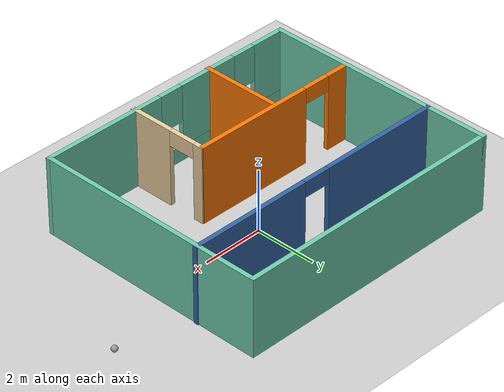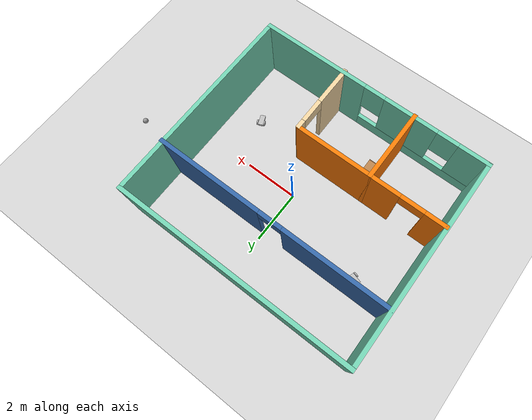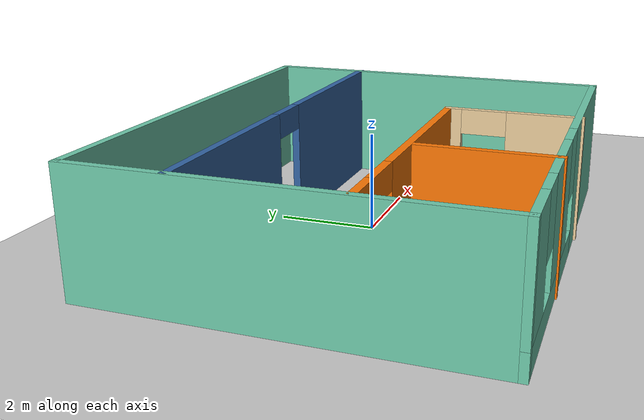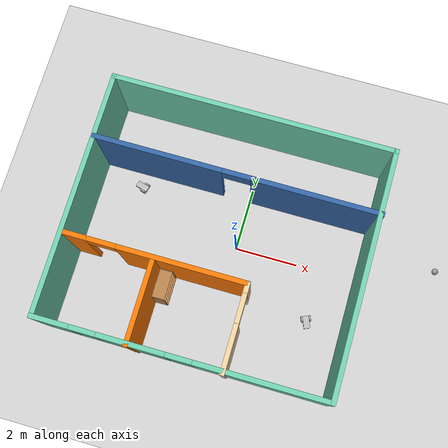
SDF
<sdf version="1.6">
 <world name="default">
  <light name="sun" type="directional">
   <pose>0 0 10 0 -0 0</pose>
   <diffuse>0.8 0.8 0.8 1</diffuse>
   <specular>0.2 0.2 0.2 1</specular>
   <attenuation>
    <range>1000</range>
    <constant>0.9</constant>
    <linear>0.01</linear>
    <quadratic>0.001</quadratic>
   </attenuation>
   <direction>-0.5 0.1 -0.9</direction>
  </light>
  <model name="ground_plane">
   <static>1</static>
   <link name="link">
    <collision name="collision">
     <geometry><plane><normal>0 0 1</normal><size>100 100</size></plane></geometry>
     <surface>
      <contact><collide_bitmask>65535</collide_bitmask></contact>
      <friction><ode><mu>100</mu><mu2>50</mu2></ode></friction>
     </surface>
    </collision>
    <visual name="visual">
     <cast_shadows>0</cast_shadows>
     <geometry><plane><normal>0 0 1</normal><size>100 100</size></plane></geometry>
     <material>
      <script><uri>file://media/materials/scripts/gazebo.material</uri><name>Gazebo/Grey</name></script>
     </material>
    </visual>
   </link>
  </model>
  <gravity>0 0 -9.8</gravity>
  <magnetic_field>6e-06 2.3e-05 -4.2e-05</magnetic_field>
  <atmosphere type="adiabatic"/>
  <physics name="default_physics" default="0" type="ode">
   <max_step_size>0.001</max_step_size>
   <real_time_factor>1</real_time_factor>
   <real_time_update_rate>1000</real_time_update_rate>
  </physics>
  <scene><ambient>0.4 0.4 0.4 1</ambient><background>0.7 0.7 0.7 1</background><shadows>1</shadows></scene>
  <spherical_coordinates>
   <surface_model>EARTH_WGS84</surface_model>
   <latitude_deg>0</latitude_deg>
   <longitude_deg>0</longitude_deg>
   <elevation>0</elevation>
   <heading_deg>0</heading_deg>
  </spherical_coordinates>
  <model name="Building">
   <pose>-0.45791 -0.167283 0 0 -0 0</pose>
   <link name="Wall_0">
    <collision name="Wall_0_Collision">
     <geometry><box><size>7.75 0.15 2.5</size></box></geometry>
     <pose>0 0 1.25 0 -0 0</pose>
    </collision>
    <visual name="Wall_0_Visual">
     <pose>0 0 1.25 0 -0 0</pose>
     <geometry><box><size>7.75 0.15 2.5</size></box></geometry>
     <material>
      <script><uri>file://media/materials/scripts/gazebo.material</uri><name>Gazebo/Grey</name></script>
      <ambient>0.435294 0.796078 0.67451 1</ambient>
     </material>
     <meta><layer>0</layer></meta>
    </visual>
    <pose>-4.4417 0.024788 0 0 -0 1.5708</pose>
   </link>
   <link name="Wall_1">
    <collision name="Wall_1_Collision">
     <geometry><box><size>9 0.15 2.5</size></box></geometry>
     <pose>0 0 1.25 0 -0 0</pose>
    </collision>
    <visual name="Wall_1_Visual">
     <pose>0 0 1.25 0 -0 0</pose>
     <geometry><box><size>9 0.15 2.5</size></box></geometry>
     <material>
      <script><uri>file://media/materials/scripts/gazebo.material</uri><name>Gazebo/Grey</name></script>
      <ambient>0.435294 0.796078 0.67451 1</ambient>
     </material>
     <meta><layer>0</layer></meta>
    </visual>
    <pose>-0.0167 3.82479 0 0 -0 0</pose>
   </link>
   <link name="Wall_11">
    <pose>0.016701 1.83597 0 0 -0 0</pose>
    <visual name="Wall_11_Visual_0">
     <pose>-2.47501 0 1.25 0 -0 0</pose>
     <geometry><box><size>4.04999 0.15 2.5</size></box></geometry>
     <material>
      <script><uri>file://media/materials/scripts/gazebo.material</uri><name>Gazebo/Grey</name></script>
      <ambient>0.203922 0.396078 0.643137 1</ambient>
     </material>
     <meta><layer>0</layer></meta>
    </visual>
    <collision name="Wall_11_Collision_0">
     <geometry><box><size>4.04999 0.15 2.5</size></box></geometry>
     <pose>-2.47501 0 1.25 0 -0 0</pose>
    </collision>
    <visual name="Wall_11_Visual_1">
     <pose>2.47499 0 1.25 0 -0 0</pose>
     <geometry><box><size>4.05001 0.15 2.5</size></box></geometry>
     <material>
      <script><uri>file://media/materials/scripts/gazebo.material</uri><name>Gazebo/Grey</name></script>
      <ambient>0.203922 0.396078 0.643137 1</ambient>
     </material>
     <meta><layer>0</layer></meta>
    </visual>
    <collision name="Wall_11_Collision_1">
     <geometry><box><size>4.05001 0.15 2.5</size></box></geometry>
     <pose>2.47499 0 1.25 0 -0 0</pose>
    </collision>
    <visual name="Wall_11_Visual_2">
     <pose>-1.4e-05 0 2.25 0 -0 0</pose>
     <geometry><box><size>0.9 0.15 0.5</size></box></geometry>
     <material>
      <script><uri>file://media/materials/scripts/gazebo.material</uri><name>Gazebo/Grey</name></script>
      <ambient>0.203922 0.396078 0.643137 1</ambient>
     </material>
     <meta><layer>0</layer></meta>
    </visual>
    <collision name="Wall_11_Collision_2">
     <geometry><box><size>0.9 0.15 0.5</size></box></geometry>
     <pose>-1.4e-05 0 2.25 0 -0 0</pose>
    </collision>
   </link>
   <link name="Wall_2">
    <collision name="Wall_2_Collision">
     <geometry><box><size>7.75 0.15 2.5</size></box></geometry>
     <pose>0 0 1.25 0 -0 0</pose>
    </collision>
    <visual name="Wall_2_Visual">
     <pose>0 0 1.25 0 -0 0</pose>
     <geometry><box><size>7.75 0.15 2.5</size></box></geometry>
     <material>
      <script><uri>file://media/materials/scripts/gazebo.material</uri><name>Gazebo/Grey</name></script>
      <ambient>0.435294 0.796078 0.67451 1</ambient>
     </material>
     <meta><layer>0</layer></meta>
    </visual>
    <pose>4.4083 0.024788 0 0 -0 -1.5708</pose>
   </link>
   <link name="Wall_3">
    <pose>-0.0167 -3.77521 0 0 -0 3.14159</pose>
    <visual name="Wall_3_Visual_0">
     <pose>-2.42297 0 1.25 0 -0 0</pose>
     <geometry><box><size>4.15406 0.15 2.5</size></box></geometry>
     <material>
      <script><uri>file://media/materials/scripts/gazebo.material</uri><name>Gazebo/Grey</name></script>
      <ambient>0.435294 0.796078 0.67451 1</ambient>
     </material>
     <meta><layer>0</layer></meta>
    </visual>
    <collision name="Wall_3_Collision_0">
     <geometry><box><size>4.15406 0.15 2.5</size></box></geometry>
     <pose>-2.42297 0 1.25 0 -0 0</pose>
    </collision>
    <visual name="Wall_3_Visual_1">
     <pose>2.07703 0 0.25 0 -0 0</pose>
     <geometry><box><size>4.84594 0.15 0.5</size></box></geometry>
     <material>
      <script><uri>file://media/materials/scripts/gazebo.material</uri><name>Gazebo/Grey</name></script>
      <ambient>0.435294 0.796078 0.67451 1</ambient>
     </material>
     <meta><layer>0</layer></meta>
    </visual>
    <collision name="Wall_3_Collision_1">
     <geometry><box><size>4.84594 0.15 0.5</size></box></geometry>
     <pose>2.07703 0 0.25 0 -0 0</pose>
    </collision>
    <visual name="Wall_3_Visual_2">
     <pose>1.4795 0 1.5 0 -0 0</pose>
     <geometry><box><size>2.05088 0.15 2</size></box></geometry>
     <material>
      <script><uri>file://media/materials/scripts/gazebo.material</uri><name>Gazebo/Grey</name></script>
      <ambient>0.435294 0.796078 0.67451 1</ambient>
     </material>
     <meta><layer>0</layer></meta>
    </visual>
    <collision name="Wall_3_Collision_2">
     <geometry><box><size>2.05088 0.15 2</size></box></geometry>
     <pose>1.4795 0 1.5 0 -0 0</pose>
    </collision>
    <visual name="Wall_3_Visual_3">
     <pose>3.90247 0 1.5 0 -0 0</pose>
     <geometry><box><size>1.19506 0.15 2</size></box></geometry>
     <material>
      <script><uri>file://media/materials/scripts/gazebo.material</uri><name>Gazebo/Grey</name></script>
      <ambient>0.435294 0.796078 0.67451 1</ambient>
     </material>
     <meta><layer>0</layer></meta>
    </visual>
    <collision name="Wall_3_Collision_3">
     <geometry><box><size>1.19506 0.15 2</size></box></geometry>
     <pose>3.90247 0 1.5 0 -0 0</pose>
    </collision>
    <visual name="Wall_3_Visual_4">
     <pose>0.054064 0 1.9 0 -0 0</pose>
     <geometry><box><size>0.8 0.15 1.2</size></box></geometry>
     <material>
      <script><uri>file://media/materials/scripts/gazebo.material</uri><name>Gazebo/Grey</name></script>
      <ambient>0.435294 0.796078 0.67451 1</ambient>
     </material>
     <meta><layer>0</layer></meta>
    </visual>
    <collision name="Wall_3_Collision_4">
     <geometry><box><size>0.8 0.15 1.2</size></box></geometry>
     <pose>0.054064 0 1.9 0 -0 0</pose>
    </collision>
    <visual name="Wall_3_Visual_5">
     <pose>2.90494 0 1.9 0 -0 0</pose>
     <geometry><box><size>0.8 0.15 1.2</size></box></geometry>
     <material>
      <script><uri>file://media/materials/scripts/gazebo.material</uri><name>Gazebo/Grey</name></script>
      <ambient>0.435294 0.796078 0.67451 1</ambient>
     </material>
     <meta><layer>0</layer></meta>
    </visual>
    <collision name="Wall_3_Collision_5">
     <geometry><box><size>0.8 0.15 1.2</size></box></geometry>
     <pose>2.90494 0 1.9 0 -0 0</pose>
    </collision>
   </link>
   <link name="Wall_5">
    <pose>-1.6083 -1.2073 0 0 -0 0</pose>
    <visual name="Wall_5_Visual_0">
     <pose>-2.45909 0 1.25 0 -0 0</pose>
     <geometry><box><size>0.831814 0.15 2.5</size></box></geometry>
     <material>
      <script><uri>file://media/materials/scripts/gazebo.material</uri><name>Gazebo/Grey</name></script>
      <ambient>0.996078 0.47451 0.0196078 1</ambient>
     </material>
     <meta><layer>0</layer></meta>
    </visual>
    <collision name="Wall_5_Collision_0">
     <geometry><box><size>0.831814 0.15 2.5</size></box></geometry>
     <pose>-2.45909 0 1.25 0 -0 0</pose>
    </collision>
    <visual name="Wall_5_Visual_1">
     <pose>0.865907 0 1.25 0 -0 0</pose>
     <geometry><box><size>4.01819 0.15 2.5</size></box></geometry>
     <material>
      <script><uri>file://media/materials/scripts/gazebo.material</uri><name>Gazebo/Grey</name></script>
      <ambient>0.996078 0.47451 0.0196078 1</ambient>
     </material>
     <meta><layer>0</layer></meta>
    </visual>
    <collision name="Wall_5_Collision_1">
     <geometry><box><size>4.01819 0.15 2.5</size></box></geometry>
     <pose>0.865907 0 1.25 0 -0 0</pose>
    </collision>
    <visual name="Wall_5_Visual_2">
     <pose>-1.59319 0 2.25 0 -0 0</pose>
     <geometry><box><size>0.9 0.15 0.5</size></box></geometry>
     <material>
      <script><uri>file://media/materials/scripts/gazebo.material</uri><name>Gazebo/Grey</name></script>
      <ambient>0.996078 0.47451 0.0196078 1</ambient>
     </material>
     <meta><layer>0</layer></meta>
    </visual>
    <collision name="Wall_5_Collision_2">
     <geometry><box><size>0.9 0.15 0.5</size></box></geometry>
     <pose>-1.59319 0 2.25 0 -0 0</pose>
    </collision>
   </link>
   <link name="Wall_7">
    <collision name="Wall_7_Collision">
     <geometry><box><size>2.75 0.15 2.5</size></box></geometry>
     <pose>0 0 1.25 0 -0 0</pose>
    </collision>
    <visual name="Wall_7_Visual">
     <pose>0 0 1.25 0 -0 0</pose>
     <geometry><box><size>2.75 0.15 2.5</size></box></geometry>
     <material>
      <script><uri>file://media/materials/scripts/gazebo.material</uri><name>Gazebo/Grey</name></script>
      <ambient>0.996078 0.47451 0.0196078 1</ambient>
     </material>
     <meta><layer>0</layer></meta>
    </visual>
    <pose>-1.60989 -2.5073 0 0 -0 -1.5708</pose>
   </link>
   <link name="Wall_9">
    <pose>1.2235 -2.52479 0 0 -0 -1.5708</pose>
    <visual name="Wall_9_Visual_0">
     <pose>-1.20395 0 1.25 0 -0 0</pose>
     <geometry><box><size>0.342093 0.15 2.5</size></box></geometry>
     <material>
      <script><uri>file://media/materials/scripts/gazebo.material</uri><name>Gazebo/Grey</name></script>
      <ambient>0.921569 0.807843 0.615686 1</ambient>
     </material>
     <meta><layer>0</layer></meta>
    </visual>
    <collision name="Wall_9_Collision_0">
     <geometry><box><size>0.342093 0.15 2.5</size></box></geometry>
     <pose>-1.20395 0 1.25 0 -0 0</pose>
    </collision>
    <visual name="Wall_9_Visual_1">
     <pose>0.621046 0 1.25 0 -0 0</pose>
     <geometry><box><size>1.50791 0.15 2.5</size></box></geometry>
     <material>
      <script><uri>file://media/materials/scripts/gazebo.material</uri><name>Gazebo/Grey</name></script>
      <ambient>0.921569 0.807843 0.615686 1</ambient>
     </material>
     <meta><layer>0</layer></meta>
    </visual>
    <collision name="Wall_9_Collision_1">
     <geometry><box><size>1.50791 0.15 2.5</size></box></geometry>
     <pose>0.621046 0 1.25 0 -0 0</pose>
    </collision>
    <visual name="Wall_9_Visual_2">
     <pose>-0.582907 0 2.25 0 -0 0</pose>
     <geometry><box><size>0.9 0.15 0.5</size></box></geometry>
     <material>
      <script><uri>file://media/materials/scripts/gazebo.material</uri><name>Gazebo/Grey</name></script>
      <ambient>0.921569 0.807843 0.615686 1</ambient>
     </material>
     <meta><layer>0</layer></meta>
    </visual>
    <collision name="Wall_9_Collision_2">
     <geometry><box><size>0.9 0.15 0.5</size></box></geometry>
     <pose>-0.582907 0 2.25 0 -0 0</pose>
    </collision>
   </link>
   <static>1</static>
  </model>
  <model name="wheely">
   <static>0</static>
   <link name="chassis">
    <pose>0 0 0.1 0 -0 0</pose>
    <collision name="collision"><geometry><box><size>0.4 0.2 0.1</size></box></geometry></collision>
    <visual name="visual"><geometry><box><size>0.4 0.2 0.1</size></box></geometry></visual>
    <collision name="caster_collision">
     <pose>-0.15 0 -0.05 0 -0 0</pose>
     <geometry><sphere><radius>0.05</radius></sphere></geometry>
     <surface><friction><ode><mu>0</mu><mu2>0</mu2><slip1>1</slip1><slip2>1</slip2></ode></friction></surface>
    </collision>
    <visual name="caster_visual">
     <pose>-0.15 0 -0.05 0 -0 0</pose>
     <geometry><sphere><radius>0.05</radius></sphere></geometry>
    </visual>
    <inertial>
     <inertia><ixx>1</ixx><ixy>0</ixy><ixz>0</ixz><iyy>1</iyy><iyz>0</iyz><izz>1</izz></inertia>
     <mass>1</mass>
    </inertial>
   </link>
   <link name="left_wheel">
    <pose>0.1 0.13 0.1 -0 1.5707 1.5707</pose>
    <collision name="collision">
     <geometry><cylinder><radius>0.1</radius><length>0.05</length></cylinder></geometry>
    </collision>
    <visual name="visual">
     <geometry><cylinder><radius>0.1</radius><length>0.05</length></cylinder></geometry>
    </visual>
    <inertial>
     <inertia><ixx>1</ixx><ixy>0</ixy><ixz>0</ixz><iyy>1</iyy><iyz>0</iyz><izz>1</izz></inertia>
     <mass>1</mass>
    </inertial>
   </link>
   <link name="right_wheel">
    <pose>0.1 -0.13 0.1 -0 1.5707 1.5707</pose>
    <collision name="collision">
     <geometry><cylinder><radius>0.1</radius><length>0.05</length></cylinder></geometry>
    </collision>
    <visual name="visual">
     <geometry><cylinder><radius>0.1</radius><length>0.05</length></cylinder></geometry>
    </visual>
    <inertial>
     <inertia><ixx>1</ixx><ixy>0</ixy><ixz>0</ixz><iyy>1</iyy><iyz>0</iyz><izz>1</izz></inertia>
     <mass>1</mass>
    </inertial>
   </link>
   <joint name="left_wheel_hinge" type="revolute">
    <pose>0 0 -0.03 0 -0 0</pose>
    <child>left_wheel</child>
    <parent>chassis</parent>
    <axis>
     <xyz>0 1 0</xyz>
     <use_parent_model_frame>1</use_parent_model_frame>
     <limit><lower>-1e+16</lower><upper>1e+16</upper></limit>
     <dynamics><spring_reference>0</spring_reference><spring_stiffness>0</spring_stiffness></dynamics>
    </axis>
   </joint>
   <joint name="right_wheel_hinge" type="revolute">
    <pose>0 0 0.03 0 -0 0</pose>
    <child>right_wheel</child>
    <parent>chassis</parent>
    <axis>
     <xyz>0 1 0</xyz>
     <use_parent_model_frame>1</use_parent_model_frame>
     <limit><lower>-1e+16</lower><upper>1e+16</upper></limit>
     <dynamics><spring_reference>0</spring_reference><spring_stiffness>0</spring_stiffness></dynamics>
    </axis>
   </joint>
   <pose>-3.52714 1.14399 2e-06 5e-05 3e-06 -0.281865</pose>
  </model>
  <model name="wheely_0">
   <static>0</static>
   <link name="chassis">
    <pose>0 0 0.1 0 -0 0</pose>
    <collision name="collision"><geometry><box><size>0.4 0.2 0.1</size></box></geometry></collision>
    <visual name="visual"><geometry><box><size>0.4 0.2 0.1</size></box></geometry></visual>
    <collision name="caster_collision">
     <pose>-0.15 0 -0.05 0 -0 0</pose>
     <geometry><sphere><radius>0.05</radius></sphere></geometry>
     <surface><friction><ode><mu>0</mu><mu2>0</mu2><slip1>1</slip1><slip2>1</slip2></ode></friction></surface>
    </collision>
    <visual name="caster_visual">
     <pose>-0.15 0 -0.05 0 -0 0</pose>
     <geometry><sphere><radius>0.05</radius></sphere></geometry>
    </visual>
    <inertial>
     <inertia><ixx>1</ixx><ixy>0</ixy><ixz>0</ixz><iyy>1</iyy><iyz>0</iyz><izz>1</izz></inertia>
     <mass>1</mass>
    </inertial>
   </link>
   <link name="left_wheel">
    <pose>0.1 0.13 0.1 -0 1.5707 1.5707</pose>
    <collision name="collision">
     <geometry><cylinder><radius>0.1</radius><length>0.05</length></cylinder></geometry>
    </collision>
    <visual name="visual">
     <geometry><cylinder><radius>0.1</radius><length>0.05</length></cylinder></geometry>
    </visual>
    <inertial>
     <inertia><ixx>1</ixx><ixy>0</ixy><ixz>0</ixz><iyy>1</iyy><iyz>0</iyz><izz>1</izz></inertia>
     <mass>1</mass>
    </inertial>
   </link>
   <link name="right_wheel">
    <pose>0.1 -0.13 0.1 -0 1.5707 1.5707</pose>
    <collision name="collision">
     <geometry><cylinder><radius>0.1</radius><length>0.05</length></cylinder></geometry>
    </collision>
    <visual name="visual">
     <geometry><cylinder><radius>0.1</radius><length>0.05</length></cylinder></geometry>
    </visual>
    <inertial>
     <inertia><ixx>1</ixx><ixy>0</ixy><ixz>0</ixz><iyy>1</iyy><iyz>0</iyz><izz>1</izz></inertia>
     <mass>1</mass>
    </inertial>
   </link>
   <joint name="left_wheel_hinge" type="revolute">
    <pose>0 0 -0.03 0 -0 0</pose>
    <child>left_wheel</child>
    <parent>chassis</parent>
    <axis>
     <xyz>0 1 0</xyz>
     <use_parent_model_frame>1</use_parent_model_frame>
     <limit><lower>-1e+16</lower><upper>1e+16</upper></limit>
     <dynamics><spring_reference>0</spring_reference><spring_stiffness>0</spring_stiffness></dynamics>
    </axis>
   </joint>
   <joint name="right_wheel_hinge" type="revolute">
    <pose>0 0 0.03 0 -0 0</pose>
    <child>right_wheel</child>
    <parent>chassis</parent>
    <axis>
     <xyz>0 1 0</xyz>
     <use_parent_model_frame>1</use_parent_model_frame>
     <limit><lower>-1e+16</lower><upper>1e+16</upper></limit>
     <dynamics><spring_reference>0</spring_reference><spring_stiffness>0</spring_stiffness></dynamics>
    </axis>
   </joint>
   <pose>2.77581 -1.69612 1e-06 5e-05 -9e-06 1.96408</pose>
  </model>
  <model name="bookshelf">
   <static>1</static>
   <link name="link">
    <inertial><mass>1</mass></inertial>
    <collision name="back">
     <pose>0 0.005 0.6 0 -0 0</pose>
     <geometry><box><size>0.9 0.01 1.2</size></box></geometry>
    </collision>
    <visual name="visual1">
     <pose>0 0.005 0.6 0 -0 0</pose>
     <geometry><box><size>0.9 0.01 1.2</size></box></geometry>
     <material>
      <script><uri>file://media/materials/scripts/gazebo.material</uri><name>Gazebo/Wood</name></script>
     </material>
    </visual>
    <collision name="left_side">
     <pose>0.45 -0.195 0.6 0 -0 0</pose>
     <geometry><box><size>0.02 0.4 1.2</size></box></geometry>
    </collision>
    <visual name="visual2">
     <pose>0.45 -0.195 0.6 0 -0 0</pose>
     <geometry><box><size>0.02 0.4 1.2</size></box></geometry>
     <material>
      <script><uri>file://media/materials/scripts/gazebo.material</uri><name>Gazebo/Wood</name></script>
     </material>
    </visual>
    <collision name="right_side">
     <pose>-0.45 -0.195 0.6 0 -0 0</pose>
     <geometry><box><size>0.02 0.4 1.2</size></box></geometry>
    </collision>
    <visual name="visual3">
     <pose>-0.45 -0.195 0.6 0 -0 0</pose>
     <geometry><box><size>0.02 0.4 1.2</size></box></geometry>
     <material>
      <script><uri>file://media/materials/scripts/gazebo.material</uri><name>Gazebo/Wood</name></script>
     </material>
    </visual>
    <collision name="bottom">
     <pose>0 -0.195 0.03 0 -0 0</pose>
     <geometry><box><size>0.88 0.4 0.06</size></box></geometry>
    </collision>
    <visual name="visual4">
     <pose>0 -0.195 0.03 0 -0 0</pose>
     <geometry><box><size>0.88 0.4 0.06</size></box></geometry>
     <material>
      <script><uri>file://media/materials/scripts/gazebo.material</uri><name>Gazebo/Wood</name></script>
     </material>
    </visual>
    <collision name="top">
     <pose>0 -0.195 1.19 0 -0 0</pose>
     <geometry><box><size>0.88 0.4 0.02</size></box></geometry>
    </collision>
    <visual name="visual5">
     <pose>0 -0.195 1.19 0 -0 0</pose>
     <geometry><box><size>0.88 0.4 0.02</size></box></geometry>
     <material>
      <script><uri>file://media/materials/scripts/gazebo.material</uri><name>Gazebo/Wood</name></script>
     </material>
    </visual>
    <collision name="low_shelf">
     <pose>0 -0.195 0.43 0 -0 0</pose>
     <geometry><box><size>0.88 0.4 0.02</size></box></geometry>
    </collision>
    <visual name="visual6">
     <pose>0 -0.195 0.43 0 -0 0</pose>
     <geometry><box><size>0.88 0.4 0.02</size></box></geometry>
     <material>
      <script><uri>file://media/materials/scripts/gazebo.material</uri><name>Gazebo/Wood</name></script>
     </material>
    </visual>
    <collision name="high_shelf">
     <pose>0 -0.195 0.8 0 -0 0</pose>
     <geometry><box><size>0.88 0.4 0.02</size></box></geometry>
    </collision>
    <visual name="visual7">
     <pose>0 -0.195 0.8 0 -0 0</pose>
     <geometry><box><size>0.88 0.4 0.02</size></box></geometry>
     <material>
      <script><uri>file://media/materials/scripts/gazebo.material</uri><name>Gazebo/Wood</name></script>
     </material>
    </visual>
   </link>
   <pose>-1.97991 -1.9136 0 0 -0 1.57281</pose>
  </model>
  <model name="my_ball">
   <link name="link_0">
    <inertial>
     <mass>1</mass>
     <inertia><ixx>0.1</ixx><ixy>0</ixy><ixz>0</ixz><iyy>0.1</iyy><iyz>0</iyz><izz>0.1</izz></inertia>
    </inertial>
    <visual name="visual">
     <geometry><sphere><radius>0.1</radius></sphere></geometry>
     <material>
      <lighting>1</lighting>
      <script><uri>file://media/materials/scripts/gazebo.material</uri><name>Gazebo/Grey</name></script>
      <shader type="pixel"><normal_map>__default__</normal_map></shader>
      <ambient>1 1 1 1</ambient>
      <diffuse>1 1 1 1</diffuse>
      <specular>1 1 1 1</specular>
      <emissive>1 1 1 1</emissive>
     </material>
    </visual>
    <collision name="collision">
     <geometry><sphere><radius>0.1</radius></sphere></geometry>
     <surface>
      <friction>
       <ode><mu>1</mu><mu2>1</mu2><fdir1>0 0 0</fdir1><slip1>0</slip1><slip2>0</slip2></ode>
       <torsional>
        <coefficient>1</coefficient>
        <patch_radius>0</patch_radius>
        <surface_radius>0</surface_radius>
        <use_patch_radius>1</use_patch_radius>
        <ode><slip>0</slip></ode>
       </torsional>
      </friction>
      <bounce><restitution_coefficient>0</restitution_coefficient><threshold>1e+06</threshold></bounce>
      <contact>
       <collide_without_contact>0</collide_without_contact>
       <collide_without_contact_bitmask>1</collide_without_contact_bitmask>
       <collide_bitmask>1</collide_bitmask>
       <ode>
        <soft_cfm>0</soft_cfm>
        <soft_erp>0.2</soft_erp>
        <kp>1e+13</kp>
        <kd>1</kd>
        <max_vel>0.01</max_vel>
        <min_depth>0</min_depth>
       </ode>
       <bullet>
        <split_impulse>1</split_impulse>
        <split_impulse_penetration_threshold>-0.01</split_impulse_penetration_threshold>
        <soft_cfm>0</soft_cfm>
        <soft_erp>0.2</soft_erp>
        <kp>1e+13</kp>
        <kd>1</kd>
       </bullet>
      </contact>
     </surface>
    </collision>
   </link>
   <static>0</static>
   <pose>6.3266 0.985715 0.1 0 -0 0</pose>
  </model>
  <plugin filename="libcollision_map_creator.so" name="collision_map_creator"/>
 </world>
</sdf>
